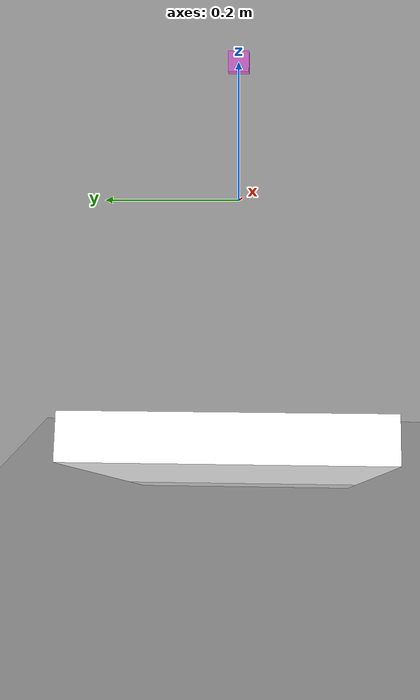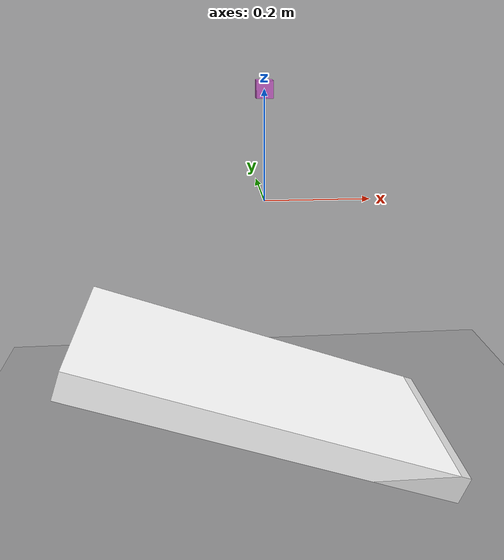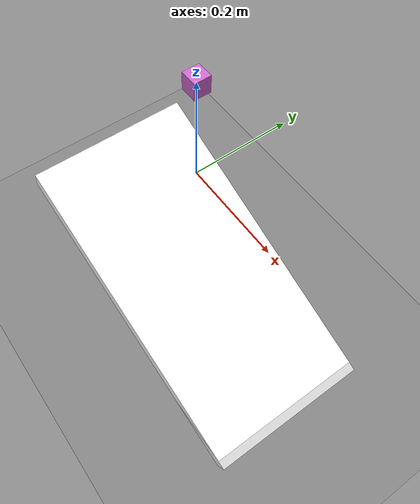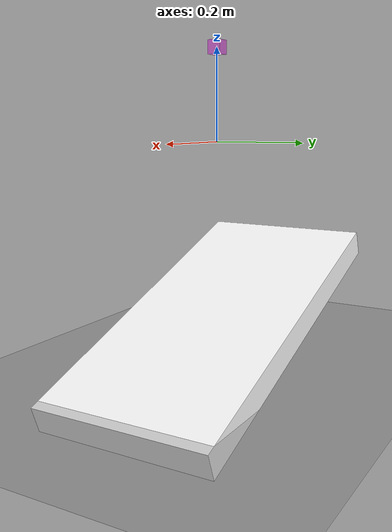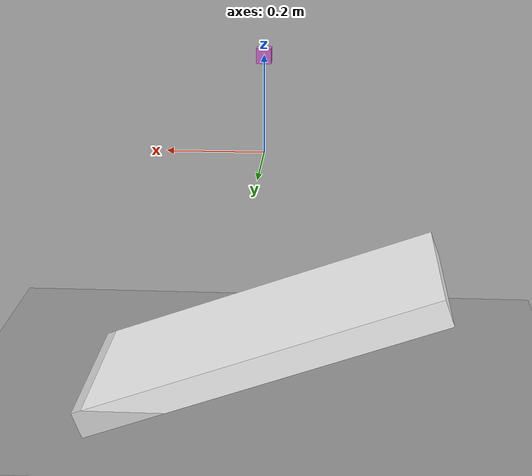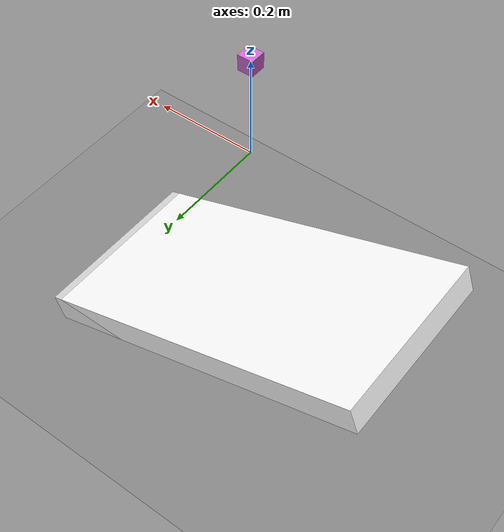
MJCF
<mujoco>
  <option density="1.204" viscosity="1.8e-5" integrator="implicit"/>

  <visual>
    <global elevation="-10"/>
  </visual>

  <default>
    <tendon limited="true" width="0.003" rgba="1 1 1 1"/>
    <geom friction=".2"/>
    <default class="weight">
      <geom rgba=".8 .4 .8 1"/>
      <site rgba=".8 .4 .8 1"/>
    </default>
    <default class="balloon">
      <!--
        0.167 is the MKS density of helium at room temperature.
        Note this does not take into account the mass of the rubber,
        which is likely not insignificant.
      -->
      <geom density="0.167" fluidshape="ellipsoid"/>
      <default class="pink">
        <geom rgba="1 .6 .7 1"/>
        <site rgba="1 .6 .7 1"/>
      </default>
      <default class="blue">
        <geom rgba=".3 .7 .9 1"/>
        <site rgba=".3 .7 .9 1"/>
      </default>
      <default class="green">
        <geom rgba=".4 .9 .5 1"/>
        <site rgba=".4 .9 .5 1"/>
      </default>
      <default class="orange">
        <geom rgba="1 .4 0 1"/>
        <site rgba="1 .4 0 1"/>
      </default>
    </default>
  </default>

  <asset>
    <texture name="grid" type="2d" builtin="checker" width="512" height="512" rgb2="0 0 0" rgb1="1 1 1"/>
    <material name="grid" texture="grid" texrepeat="2 2" texuniform="true" reflectance=".6"/>
  </asset>

  <worldbody>
    <geom name="ground" type="plane" size="5 5 .05" pos="0 0 -.5" material="grid"/>
    <geom name="ramp" type="box" size=".4 .2 .03" pos="0 0 -.4" euler="0 20 0" rgba="1 1 1 1"/>

    <body name="weight" childclass="weight" pos=".3 0 .2">
      <freejoint/>
      <light pos="1 0 3" dir="-1 0 -3" mode="trackcom"/>
      <light pos="-1 0 3" dir="1 0 -3" mode="trackcom"/>
      <!-- The mass of the weight was chosen to be slightly bigger than the total buoyancy of the balloons. -->
      <geom name="weight" type="box" size=".015 .015 .015" mass=".0347" pos="-0.3 0 0" friction="1" solref="" solimp=""/>
    </body>

    <!-- The gravcomp value of 7.2 is the ratio of air and helium desities at room temperature. -->
  </worldbody>

</mujoco>
